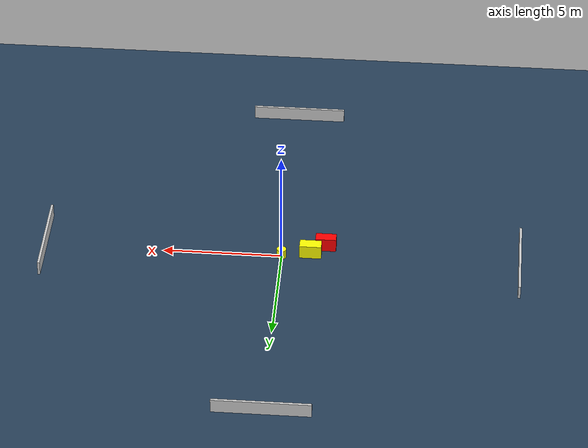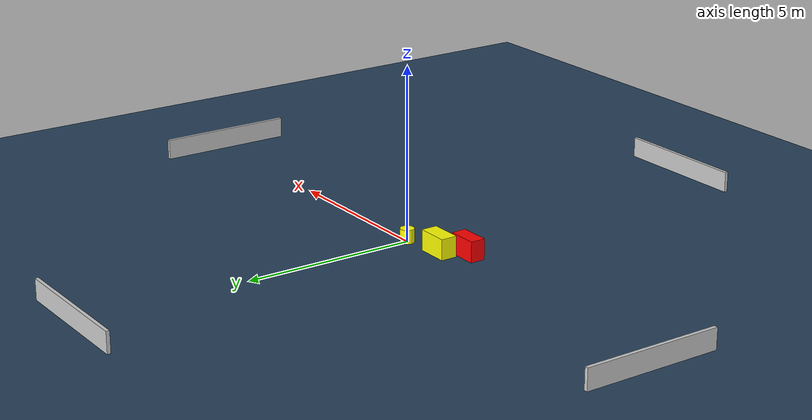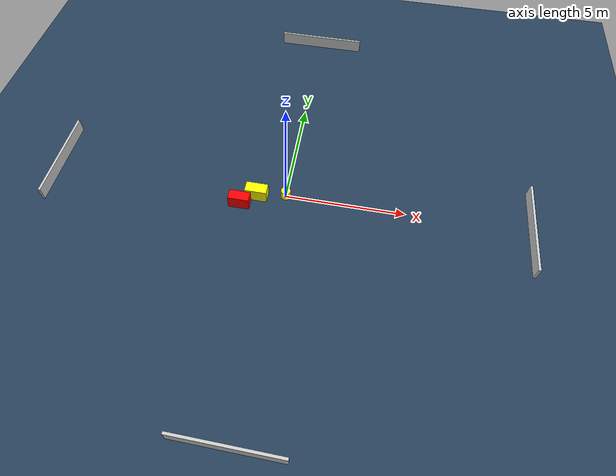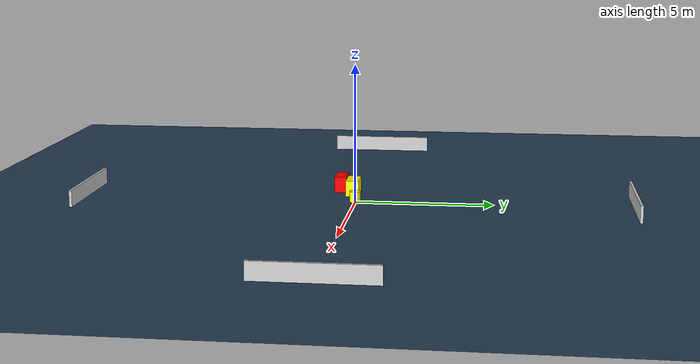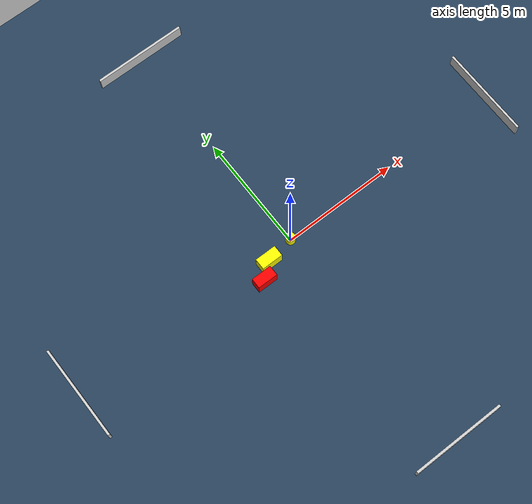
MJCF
<?xml version="1.0" ?>
<mujoco model="generated_environment">
  <option timestep="0.01" integrator="RK4" cone="elliptic"/>
  <default>
    <geom density="1"/>
  </default>
  <asset>
    <texture builtin="gradient" height="3072" name="skybox" rgb1="0.3 0.5 0.7" rgb2="0 0 0" type="skybox" width="512"/>
    <texture builtin="checker" height="300" name="groundplane" rgb1="0.2 0.3 0.4" rgb2="0.1 0.2 0.3" type="2d" width="300"/>
    <material name="groundplane" reflectance="0.2" texrepeat="5 5" texture="groundplane"/>
  </asset>
  <worldbody>
    <light dir="0 0 -1" directional="true" pos="0 0 1.5"/>
    <geom condim="3" friction="0.5 0.005 0.001" material="groundplane" name="floor" pos="0 0 0" size="0 0 0.05" type="plane"/>
    <body name="walls">
      <geom name="wall_1" condim="4" pos="-10.0 0.0 0.3" rgba="0.800000011920929 0.800000011920929 0.800000011920929 1.0" size="0.05 2.0 0.3" type="box"/>
      <geom name="wall_2" condim="4" pos="10.0 0.0 0.3" rgba="0.800000011920929 0.800000011920929 0.800000011920929 1.0" size="0.05 2.0 0.3" type="box"/>
      <geom name="wall_3" condim="4" pos="0.0 -10.0 0.3" rgba="0.800000011920929 0.800000011920929 0.800000011920929 1.0" size="2.0 0.05 0.3" type="box"/>
      <geom name="wall_4" condim="4" pos="0.0 10.0 0.3" rgba="0.800000011920929 0.800000011920929 0.800000011920929 1.0" size="2.0 0.05 0.3" type="box"/>
    </body>
    <body name="robot">
      <joint name="joint_x" type="slide" pos="0 0 0" axis="1 0 0"/>
      <joint name="joint_y" type="slide" pos="0 0 0" axis="0 1 0"/>
      <geom name="robot" type="cylinder" pos="0.0 0.0 0.2" size="0.2 0.2 0.0" mass="5.0" friction="1.0 0.005 0.0001" condim="4" rgba="1.0 1.0 0.0 1.0"/>
    </body>
    <body name="obstacle_1_movable">
      <geom name="obstacle_1_movable" condim="4" pos="-1.2097689469008075 -0.2041005612761031 0.3" euler="0 0 269.86915284294724" friction="0.0 0.005 0.001" rgba="1.0 1.0 0.0 1.0" size="0.23657529438993452 0.45824141523332623 0.3" type="box" mass="0.1"/>
      <joint type="free"/>
    </body>
    <body name="obstacle_2_static">
      <geom name="obstacle_2_static" condim="4" pos="-1.8245539373506598 -0.7237102609612596 0.3" euler="0 0 269.94907740825664" friction="0.0 0.005 0.001" rgba="1.0 0.0 0.0 1.0" size="0.21883416643779738 0.4349257181196062 0.3" type="box"/>
    </body>
  </worldbody>
  <actuator>
    <motor name="actuator_x" joint="joint_x" gear="1" ctrlrange="-1 1"/>
    <motor name="actuator_y" joint="joint_y" gear="1" ctrlrange="-1 1"/>
  </actuator>
</mujoco>
